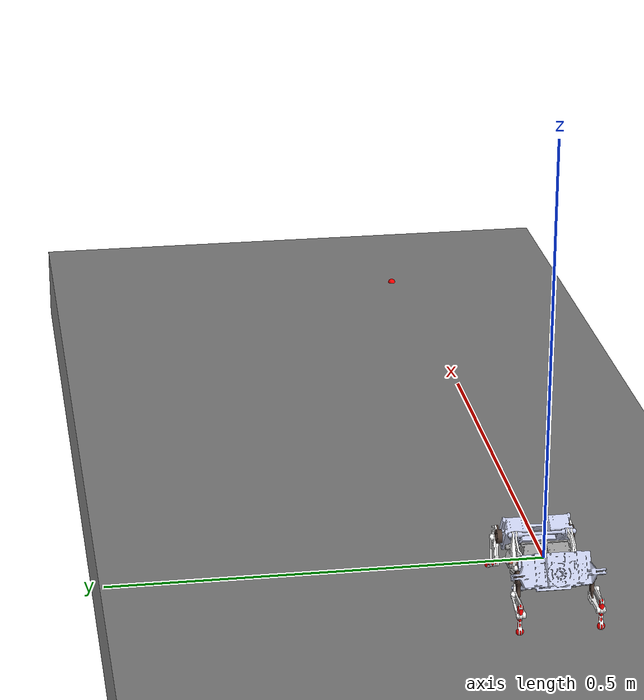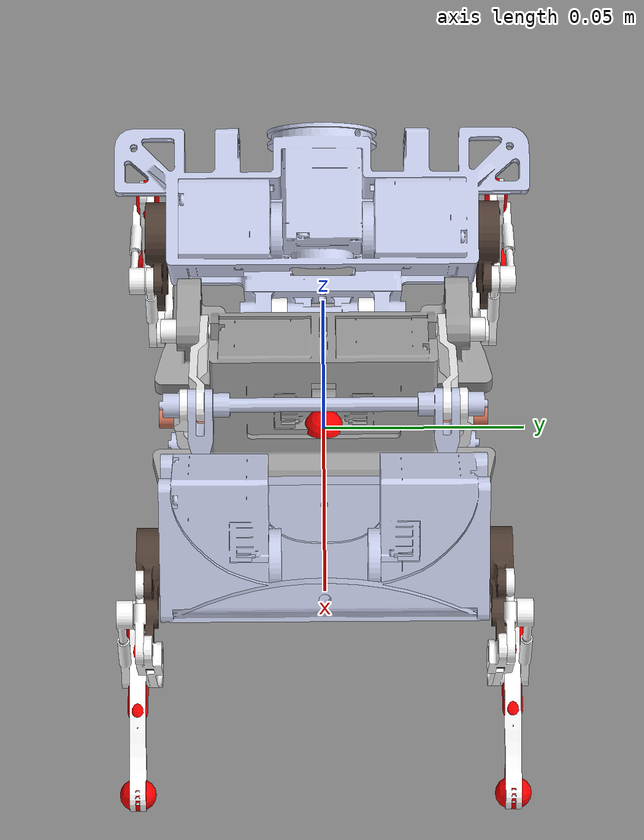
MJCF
<mujoco model="20240517sengibot_urdfall_2 - demo">
  <compiler angle="radian" meshdir="D:\MuJoCoLab_1.5\src\mjlab\asset_zoo\robots\Sengibot\xmls\meshes"/>
  <option timestep="2e-3" iterations="200" tolerance="1e-9" cone="elliptic"/>

  <size nconmax="500" njmax="1000"/>

  <equality>
    <connect body1="link_upinner" body2="link_upleft0" anchor="0.01639 0.00008 0.02513" solimp="1 1 0.001"/>
    <connect body1="link_upleft1" body2="link_up_p" anchor="-0.04064 -0.0001 -0.02109" solimp="1 1 0.001"/>
    <connect body1="link_up_p" body2="link_upright1" anchor="0 0 0" solimp="1 1 0.001"/>
    <connect body1="link_downinner" body2="link_downright0" anchor="-0.01232 -0.00002 -0.02735" solimp="1 1 0.001"/>
    <connect body1="link_downright1" body2="link_down_p" anchor="0.04357 0 0.01407" solimp="1 1 0.001"/>
    <connect body1="link_down_p" body2="link_downleft1" anchor="0 0 0" solimp="1 1 0.001"/>
    <connect body1="Link_LH1" body2="link_LH_upspring1" anchor="0.010 0 -0.00005" solimp="1 1 0.001"/>
    <connect body1="link_LH_tibia" body2="link_LH_downspring1" anchor="0 0 0" solimp="1 1 0.001"/>
    <connect body1="link_LH_tibia" body2="link_LH_femur" anchor="0.00045 0 0.00999" solimp="1 1 0.001"/>
    <connect body1="link_RH1" body2="link_RH_upspring1" anchor="0.010 0 -0.00005" solimp="1 1 0.001"/>
    <connect body1="link_RH_tibia" body2="link_RH_downspring1" anchor="0 0 0" solimp="1 1 0.001"/>
    <connect body1="link_RH_tibia" body2="link_RH_femur" anchor="0.00045 0 0.00999" solimp="1 1 0.001"/>
    <connect body1="link_LF1" body2="link_LF_upspring1" anchor="0.00447 0 0.00895" solimp="1 1 0.001"/>
    <connect body1="link_LF_tibia" body2="link_LF_downspring1" anchor="0 0 0" solimp="1 1 0.001"/>
    <connect body1="link_LF_tibia" body2="link_LF_femur" anchor="-0.00876 0 0.00482" solimp="1 1 0.001"/>
    <connect body1="link_RF1" body2="link_RF_upspring1" anchor="0.00447 0 0.00895" solimp="1 1 0.001"/>
    <connect body1="link_RF_tibia" body2="link_RF_downspring1" anchor="0 0 0" solimp="1 1 0.001"/>
    <connect body1="link_RF_tibia" body2="link_RF_femur" anchor="-0.00876 0 0.00482" solimp="1 1 0.001"/>
  </equality>

  <asset>
    <texture name="texplane" type="2d" builtin="checker" rgb1=".2 .3 .4" rgb2=".1 0.15 0.2" width="256" height="256" mark="cross" markrgb=".1 .1 .1"/>
    <material name="matplane" reflectance="0.3" texture="texplane" texrepeat="10 10" texuniform="true"/>
  </asset>

  <asset>
	<hfield name="terrain" nrow="1000" ncol="1000" size="2.5 2.5 0.1 0.01"/>
  </asset>

  <asset>
  <!-- "link_downleft0" == 前架；"link_upright0" == 后架 -->
    <mesh name="base_link" file="base_link.STL"/>
    <mesh name="link_upleft0" file="link_upleft0.STL"/>
    <mesh name="link_upleft1" file="link_upleft1.STL"/>
    <mesh name="link_upright0" file="link_upright0.STL"/>
    <mesh name="link_upright1" file="link_upright1.STL"/>
    <mesh name="link_LH_drive" file="link_LH_drive.STL"/>
    <mesh name="link_LH_upspring0" file="link_LH_upspring0.STL"/>
    <mesh name="link_LH_upspring1" file="link_LH_upspring1.STL"/>
    <mesh name="link_LH_downspring0" file="link_LH_downspring0.STL"/>
    <mesh name="link_LH_downspring1" file="link_LH_downspring1.STL"/>
    <mesh name="link_LH_femur" file="link_LH_femur.STL"/>
    <mesh name="Link_LH1" file="Link_LH1.STL"/>
    <mesh name="link_LH_tibia" file="link_LH_tibia.STL"/>
    <mesh name="link_RH_drive" file="link_RH_drive.STL"/>
    <mesh name="link_RH_upspring0" file="link_RH_upspring0.STL"/>
    <mesh name="link_RH_upspring1" file="link_RH_upspring1.STL"/>
    <mesh name="link_RH_downspring0" file="link_RH_downspring0.STL"/>
    <mesh name="link_RH_downspring1" file="link_RH_downspring1.STL"/>
    <mesh name="link_RH_femur" file="link_RH_femur.STL"/>
    <mesh name="link_RH1" file="link_RH1.STL"/>
    <mesh name="link_RH_tibia" file="link_RH_tibia.STL"/>
    <mesh name="link_up_p" file="link_up_p.STL"/>
    <mesh name="link_waist_drive" file="link_waist_drive.STL"/>
    <mesh name="link_upinner" file="link_upinner.STL"/>
    <mesh name="link_downinner" file="link_downinner.STL"/>
    <mesh name="link_downleft0" file="link_downleft0.STL"/>
    <mesh name="link_downleft1" file="link_downleft1.STL"/>
    <mesh name="link_LF_drive" file="link_LF_drive.STL"/>
    <mesh name="link_LF_upspring0" file="link_LF_upspring0.STL"/>
    <mesh name="link_LF_upspring1" file="link_LF_upspring1.STL"/>
    <mesh name="link_LF_downspring0" file="link_LF_downspring0.STL"/>
    <mesh name="link_LF_downspring1" file="link_LF_downspring1.STL"/>
    <mesh name="link_LF_femur" file="link_LF_femur.STL"/>
    <mesh name="link_LF1" file="link_LF1.STL"/>
    <mesh name="link_LF_tibia" file="link_LF_tibia.STL"/>
    <mesh name="link_RF_drive" file="link_RF_drive.STL"/>
    <mesh name="link_RF_upspring0" file="link_RF_upspring0.STL"/>
    <mesh name="link_RF_upspring1" file="link_RF_upspring1.STL"/>
    <mesh name="link_RF_downspring0" file="link_RF_downspring0.STL"/>
    <mesh name="link_RF_downspring1" file="link_RF_downspring1.STL"/>
    <mesh name="link_RF_femur" file="link_RF_femur.STL"/>
    <mesh name="link_RF1" file="link_RF1.STL"/>
    <mesh name="link_RF_tibia" file="link_RF_tibia.STL"/>
    <mesh name="link_downright0" file="link_downright0.STL"/>
    <mesh name="link_downright1" file="link_downright1.STL"/>
    <mesh name="link_down_p" file="link_down_p.STL"/>
  </asset>

  <worldbody>

	<body name="terrain" pos="0 0 0">
		<geom name="platform1" pos="0 0 -0.1" size="5.5 0.5 .05" type="box" margin="1e-5" condim="3" contype="1" friction="0.33 0.01 0.01" solref="0.004 1" rgba="0.5 0.5 0.5 1"/>
		<geom name="site" type="sphere" pos="1 0 -0.05" size="0.005" rgba="1 0 0 1" contype="0" conaffinity="0" />
	</body>
	 <!-- 添加一个用于显示质心的浮动 body -->
    <body name="com_visual" mocap="true" pos="0 0 0">
        <geom name="com_indicator" type="sphere" size="0.005" rgba="1 0 0 1" contype="0" conaffinity="0" />
    </body>
	   <body name="torso" >
		  <geom type="mesh" contype="0" conaffinity="0" group="1" density="0" rgba="0.627451 0.627451 0.627451 1" mesh="base_link"/>
		  <inertial pos="-7.295E-03 0.026E-03 -0.442E-03" quat="0.684538 0.684538 -0.177221 0.177221" mass="69e-3" diaginertia="3.3448e-05 1.9836e-05 4.2315e-05"/>
		  <freejoint name="robot"/>

		  <!-- 设置跟随相机 -->
		  <camera name="follow_camera" mode='track' pos="0 -1.0 0" euler="1.57 0 0" fovy="20" />
		  <light name="follow_light" mode="track" pos="0 -0.5 0.5" dir="0 0 -1" directional="true" castshadow="false" ambient="0.3 0.3 0.3" diffuse="0.8 0.8 0.8" specular="0.2 0.2 0.2" active="true"/>
		<body name="link_upleft0" pos="0.023934 -8.2545e-05 0.0041101">
		  <inertial pos="-0.00982017 5.3171e-05 0.0176946" quat="0.684538 0.684538 -0.177221 0.177221" mass="0.00375372" diaginertia="3.92658e-07 3.1666e-07 9.8528e-08"/>
		  <joint name="joint_upleft0" pos="0 0 0" axis="0 1 0" range="-3.14 3.14" damping="0.0005" type="hinge" armature="0.00005" limited="true"/>
		  <geom type="mesh" contype="0" conaffinity="0" group="1" density="0" rgba="0.792157 0.819608 0.933333 1" mesh="link_upleft0"/>
		  <body name="link_upleft1" pos="-0.0117052 0.0001 0.0210911">
			<inertial pos="-0.0209999 -5e-05 -0.0108986" quat="0.604285 0.367204 0.367204 0.604285" mass="0.00145083" diaginertia="3.20718e-07 3.13852e-07 9.89858e-09"/>
			<joint name="joint_upleft1" pos="0 0 0" axis="0 -1 0" range="-3.14 3.14" damping="0.0005" type="hinge" armature="0.00005" limited="true"/>
			<geom type="mesh" contype="0" conaffinity="0" group="1" density="0" rgba="1 1 1 1" mesh="link_upleft1"/>
		  </body>
		</body>
		<body name="link_upright0" pos="-0.039266 -3.25447e-05 -0.00454986">
		  <inertial pos="-17.457E-03 -0.005E-03 17.581E-03" quat="0.647168 0.647039 -0.285209 0.284903" mass="92e-3" diaginertia="53.225e-06 17.653e-06 52.362e-06"/>
		  <joint name="joint_upright0" pos="0 0 0" axis="0 -1 0" range="0 1.047" damping="0.0005" type="hinge" armature="0.00005" limited="true"/>
		  <geom type="mesh" contype="1" conaffinity="1" group="1" density="0" rgba="0.792157 0.819608 0.933333 1" mesh="link_upright0"/>
		  <body name="link_upright1" pos="0.00539585 -5e-05 0.00870301">
			<inertial pos="0.00272992 5e-05 -2.15042e-05" quat="0.498027 0.501965 0.501965 0.498027" mass="0.000524864" diaginertia="1.04177e-08 7.9116e-09 3.88156e-09"/>
			<joint name="joint_upright1" pos="0 0 0" axis="0 -1 0" range="-3.14 3.14" damping="0.0005" type="hinge" armature="0.00005" limited="true"/>
			<geom type="mesh" contype="0" conaffinity="0" group="1" density="0" rgba="1 1 1 1" mesh="link_upright1"/>
		  </body>
		  <body name="link_LH_drive" pos="-0.0189103 0.04525 0.0117244">
			<inertial pos="0.000249013 -0.00306057 -0.00475959" quat="0.706445 0.0116896 0.00908539 0.707613" mass="0.00161934" diaginertia="1.47502e-07 1.26531e-07 2.79963e-08"/>
			<joint name="joint_LH_drive" pos="0 0 0" axis="0 1 0" range="-1.0 1.5" damping="0.005" type="hinge" armature="0.00015" limited="true"/>
			<geom type="mesh" contype="0" conaffinity="0" group="1" density="0" rgba="0.317647 0.247059 0.207843 1" mesh="link_LH_drive"/>
			<body name="link_LH_upspring0" pos="0.00967535 0 -0.00744228">
			  <inertial pos="-0.000129935 -0.001 -0.00286595" quat="0.706925 0.0160168 0.0160168 0.706925" mass="1.485126e-03" diaginertia="1.7741e-09 1.58295e-09 2.38179e-10"/>
			  <joint name="joint_LH_upspring0" pos="0 0 0" axis="0 1 0" range="-3.14 3.14" damping="0.0005" type="hinge" armature="0.00005" limited="true"/>
			  <geom type="mesh" contype="0" conaffinity="0" group="1" density="0" rgba="1 1 1 1" mesh="link_LH_upspring0"/>
			  <body name="link_LH_upspring1" pos="-0.00102354 0 -0.0225768">
				<inertial pos="0.000199448 -0.001 0.00439942" quat="0.706925 0.016016 0.016016 0.706925" mass="0.001511144" diaginertia="3.20482e-09 2.97472e-09 3.38861e-10"/>
				<joint name="joint_LH_upspring1" pos="0 0 0" axis="-0.0452892 0 -0.998974" type="slide" range="-0.05 0.05" stiffness="1500" damping="0.0005" armature="0.00005" limited="true" springref="-0.002"/>
				<geom type="mesh" contype="0" conaffinity="0" group="1" density="0" rgba="1 1 1 1" mesh="link_LH_upspring1"/>
			  </body>
			</body>
			<body name="link_LH_downspring0" pos="-0.000898708 0 -0.0199798">
			  <inertial pos="-0.00191627 0.00324043 -0.000619387" quat="0.58988 0.441364 0.389924 0.552447" mass="0.001532344" diaginertia="2.85179e-09 2.57389e-09 5.69633e-10"/>
			  <joint name="joint_LH_downspring0" pos="0 0 0" axis="0 -1 0" range="-3.14 3.14" damping="0.0005" type="hinge" armature="0.00005" limited="true"/>
			  <geom type="mesh" contype="0" conaffinity="0" group="1" density="0" rgba="1 1 1 1" mesh="link_LH_downspring0"/>
			  <body name="link_LH_downspring1" pos="-0.030449 0 -0.0098417">
				<inertial pos="0.00485605 0.00400001 0.00156956" quat="0.571741 0.416067 0.416067 0.571741" mass="0.001517678" diaginertia="4.19189e-09 3.96178e-09 3.50164e-10"/>
				<joint name="joint_LH_downspring1" pos="0 0 0" axis="-0.951531 0 -0.307553" type="slide" range="-0.05 0.05" damping="0.0005" armature="0.00005" limited="true"/>
				<geom type="mesh" contype="0" conaffinity="0" group="1" density="0" rgba="1 1 1 1" mesh="link_LH_downspring1"/>
			  </body>
			</body>
			<body name="link_LH_femur" pos="-0.000898708 0 -0.0199798">
			  <inertial pos="-0.0149998 0 7.40975e-05" quat="0.498764 0.501233 0.501233 0.498764" mass="0.001061532" diaginertia="3.28664e-08 3.2012e-08 9.96447e-10"/>
			  <joint name="joint_LH_femur" pos="0 0 0" axis="0 -1 0" range="-3 3" damping="0.0005" type="hinge" armature="0.00005" limited="true"/>
			  <geom type="mesh" contype="0" conaffinity="0" group="1" density="0" rgba="1 1 1 1" mesh="link_LH_femur"/>
			</body>
			<body name="Link_LH1" pos="-0.00134806 0 -0.0299697">
			  <inertial pos="-0.0101495 -0.003 -0.000167372" quat="0.494638 0.505305 0.505305 0.494638" mass="0.000821746" diaginertia="1.29043e-07 1.27809e-07 4.86076e-09"/>
			  <joint name="joint_LH1" pos="0 0 0" axis="0 1 0" range="-3 3" damping="0.0005" type="hinge" armature="0.00005" limited="true"/>
			  <geom type="mesh" contype="1" conaffinity="1" group="1" density="0" rgba="1 1 1 1" mesh="Link_LH1"/>
			  <body name="link_LH_tibia" pos="-0.0299996 0 0.000148195">
				<inertial pos="1.51888e-05 0.00119496 -0.00787586" quat="0.71427 0.00661081 0.0245086 0.69941" mass="0.001269622" diaginertia="6.01074e-08 5.8585e-08 2.5425e-09"/>
				<joint name="joint_LH_tibia" pos="0 0 0" axis="0 -1 0" range="-0.7 0.7" damping="0.005" type="hinge" armature="0.00015" limited="true"/>
				<geom name="LH_foot" type="mesh" contype="0" conaffinity="0" group="1" density="0" rgba="1 1 1 1" mesh="link_LH_tibia" friction="0.1 0.01 0.01"/>
				<geom name="tibia3_1" type="capsule" pos="0 0.001 0.005" axisangle="0 1 0 0" size="0.003 0.0055 0" rgba="1 0 0 1" contype="1" conaffinity="1" friction="0.0 0.01 0.01" solref="0.004 1"/>
				<geom name="tibia3_2" type="capsule" pos="0.0003 0.001 -0.0025" axisangle="0 1 0 -0.25" size="0.0025 0.004 0" rgba="1 0 0 1" contype="1" conaffinity="1" friction="0.0 0.01 0.01" solref="0.004 1"/>
				<geom name="tibia3_3" type="capsule" pos="0.0003 0.001 -0.015" axisangle="0 1 0 0.25" size="0.002 0.005 0" rgba="1 0 0 1" contype="1" conaffinity="1" friction="0.0 0.01 0.01" solref="0.004 1"/>
				<geom name="foot3" type="capsule" pos="-0.001 0.001 -0.02" axisangle="1 0 0 1.57079633" size="0.004 0.0005 0" rgba="1 0 0 1" contype="1" conaffinity="1" friction="0.0 0.01 0.01" solref="0.004 1"/>
			  </body>
			</body>
		  </body>
		  <body name="link_RH_drive" pos="-0.01891 -0.04525 0.011724">
			<inertial pos="0.000249013 0.00306057 -0.00475959" quat="0.707613 0.00908538 0.0116896 0.706445" mass="0.00161934" diaginertia="1.47502e-07 1.26531e-07 2.79963e-08"/>
			<joint name="joint_RH_drive" pos="0 0 0" axis="0 1 0" range="-1.0 1.5" damping="0.005" type="hinge" armature="0.00015" limited="true"/>
			<geom type="mesh" contype="0" conaffinity="0" group="1" density="0" rgba="0.317647 0.247059 0.207843 1" mesh="link_RH_drive"/>
			<body name="link_RH_upspring0" pos="0.0096754 0 -0.0074423">
			  <inertial pos="-0.000129935 0.000999999 -0.00286595" quat="0.706925 0.0160168 0.0160168 0.706925" mass="1.485126e-03" diaginertia="1.7741e-09 1.58295e-09 2.38179e-10"/>
			  <joint name="joint_RH_upspring0" pos="0 0 0" axis="0 1 0" range="-3.14 3.14" damping="0.0005" type="hinge" armature="0.00005" limited="true"/>
			  <geom type="mesh" contype="0" conaffinity="0" group="1" density="0" rgba="1 1 1 1" mesh="link_RH_upspring0"/>
			  <body name="link_RH_upspring1" pos="-0.0010235 0 -0.022577">
				<inertial pos="0.000199448 0.000999995 0.00439942" quat="0.706925 0.016016 0.016016 0.706925" mass="0.00151144" diaginertia="3.20482e-09 2.97472e-09 3.38861e-10"/>
				<joint name="joint_RH_upspring1" pos="0 0 0" axis="-0.0452892 0 -0.998974" type="slide" range="-0.03 0.03" stiffness="1500" damping="0.0005"  armature="0.00005" limited="true" springref= "-0.002"/>
				<geom type="mesh" contype="0" conaffinity="0" group="1" density="0" rgba="1 1 1 1" mesh="link_RH_upspring1"/>
			  </body>
			</body>
			<body name="link_RH_downspring0" pos="-0.00089871 0 -0.01998">
			  <inertial pos="-0.00191625 -0.00324043 -0.000619374" quat="0.552446 0.389926 0.441365 0.58988" mass="0.001532343" diaginertia="2.85176e-09 2.57387e-09 5.69633e-10"/>
			  <joint name="joint_RH_downspring0" pos="0 0 0" axis="0 1 0" range="-3.14 3.14" damping="0.0005" type="hinge" armature="0.00005" limited="true"/>
			  <geom type="mesh" contype="0" conaffinity="0" group="1" density="0" rgba="1 1 1 1" mesh="link_RH_downspring0"/>
			  <body name="link_RH_downspring1" pos="-0.030449 0 -0.0098417">
				<inertial pos="0.00485605 -0.00399999 0.00156956" quat="0.571741 0.416067 0.416067 0.571741" mass="0.001517678" diaginertia="4.19189e-09 3.96178e-09 3.50164e-10"/>
				<joint name="joint_RH_downspring1" pos="0 0 0" axis="-0.951532 0 -0.307551" type="slide" range="-0.03 0.03" damping="0.0005"  armature="0.00005" limited="true"/>
				<geom type="mesh" contype="0" conaffinity="0" group="1" density="0" rgba="1 1 1 1" mesh="link_RH_downspring1"/>
			  </body>
			</body>
			<body name="link_RH_femur" pos="-0.00089871 0 -0.01998">
			  <inertial pos="-0.0149998 0 7.40975e-05" quat="0.498764 0.501233 0.501233 0.498764" mass="0.001061532" diaginertia=" 9.96447e-10 3.28664e-08 3.2012e-08"/>
			  <joint name="joint_RH_femur" pos="0 0 0" axis="0 1 0" range="-3.14 3.14" damping="0.0005" type="hinge" armature="0.00005" limited="true"/>
			  <geom type="mesh" contype="0" conaffinity="0" group="1" density="0" rgba="1 1 1 1" mesh="link_RH_femur"/>
			</body>
			<body name="link_RH1" pos="-0.0013481 0 -0.02997">
			  <inertial pos="-0.0101495 0.003 -0.000167372" quat="0.494638 0.505305 0.505305 0.494638" mass="0.000821746" diaginertia=" 4.86076e-09 1.29043e-07 1.27809e-07"/>
			  <joint name="joint_RH1" pos="0 0 0" axis="0 1 0" range="-3 3" damping="0.0005" type="hinge" armature="0.00005" limited="true"/>
			  <geom type="mesh" contype="1" conaffinity="1" group="1" density="0" rgba="1 1 1 1" mesh="link_RH1"/>
			  <body name="link_RH_tibia" pos="-0.03 0 0.0001482">
				<inertial pos="1.57079e-05 -0.00118949 -0.00782787" quat="0.699694 0.0242515 0.00677689 0.713998" mass="0.001269622" diaginertia="6.03593e-08 5.88327e-08 2.55745e-09"/>
				<joint name="joint_RH_tibia" pos="0 0 0" axis="0 1 0" range="-0.7 0.7" damping="0.005" type="hinge" armature="0.00015" limited="true"/>
				<geom name="RH_foot" type="mesh" contype="0" conaffinity="0" group="1" density="0" rgba="1 1 1 1" mesh="link_RH_tibia" friction="0.1 0.01 0.01"/>
				<geom name="tibia4_1" type="capsule" pos="0 -0.001 0.005" axisangle="0 1 0 0" size="0.003 0.0055 0" rgba="1 0 0 1" contype="1" conaffinity="1" friction="0.0 0.01 0.01" solref="0.004 1"/>
				<geom name="tibia4_2" type="capsule" pos="0.0003 -0.001 -0.0025" axisangle="0 1 0 -0.25" size="0.0025 0.004 0" rgba="1 0 0 1" contype="1" conaffinity="1" friction="0.0 0.01 0.01" solref="0.004 1"/>
				<geom name="tibia4_3" type="capsule" pos="0.0003 -0.001 -0.015" axisangle="0 1 0 0.25" size="0.002 0.005 0" rgba="1 0 0 1" contype="1" conaffinity="1" friction="0.0 0.01 0.01" solref="0.004 1"/>
				<geom name="foot4" type="capsule" pos="-0.001 -0.001 -0.02" axisangle="1 0 0 1.57079633" size="0.004 0.0005 0" rgba="1 0 0 1" contype="1" conaffinity="1" friction="0.0 0.01 0.01" solref="0.004 1"/>
			  </body>
			</body>
		  </body>
		</body>
		<body name="link_up_p" pos="-0.02841 -8.2545e-05 0.0041101">
		  <inertial pos="0 4.97246e-05 0" quat="0.707107 0.707107 0 0" mass="0.00253019" diaginertia="1.5413e-07 1.5413e-07 6.45596e-09"/>
		  <joint name="joint_up_p" pos="0 0 0" axis="1 0 0" type="slide" range="-0.003 0.003" damping="0.0005" armature="0.00005" limited="true"/>
		  <geom type="mesh" contype="0" conaffinity="0" group="1" density="0" rgba="1 1 1 1" mesh="link_up_p"/>
		</body>
		<body name="link_waist_drive" pos="-0.006066 -3.2545e-05 -0.0045499">
		  <inertial pos="0.000589054 0 0.0014254" quat="0.693576 0.137666 0.137666 0.693576" mass="0.00973607" diaginertia="2.70184e-07 1.79814e-07 1.45205e-07"/>
		  <joint name="joint_waist_drive" pos="0 0 0" axis="0 -1 0" damping="0.005" type="hinge" armature="0.00015" limited="false"/>
		  <geom type="mesh" contype="0" conaffinity="0" group="1" density="0" rgba="0.839216 0.470588 0.368627 1" mesh="link_waist_drive"/>
		  <body name="link_upinner" pos="0.00190964 -2.66799e-05 0.00462096">
			<inertial pos="0.00777753 2.66799e-05 0.0119285" quat="0.677804 0.20145 0.20145 0.677804" mass="0.00151864" diaginertia="1.27249e-07 1.20283e-07 1.02553e-08"/>
			<!-- 注意：3.14不是pi，这会限制全周运动 -->
			<joint name="joint_upinner" pos="0 0 0" axis="0 -1 0" damping="0.0005" type="hinge" armature="0.00005" limited="false"/>
			<geom type="mesh" contype="0" conaffinity="0" group="1" density="0" rgba="1 1 1 1" mesh="link_upinner"/>
		  </body>
		  <body name="link_downinner" pos="0.00190964 -2.66799e-05 0.00462096">
			<inertial pos="-0.00615947 2.66799e-05 -0.013677" quat="0.69134 0.148491 0.148491 0.69134" mass="0.00140744" diaginertia="1.19201e-07 1.13152e-07 9.33241e-09"/>
			<joint name="joint_downinner" pos="0 0 0" axis="0 -1 0" damping="0.0005" type="hinge" armature="0.00005" limited="false"/>
			<geom type="mesh" contype="1" conaffinity="1" group="1" density="0" rgba="1 1 1 1" mesh="link_downinner"/>
		  </body>
		</body>
		<body name="link_downleft0" pos="0.027134 -3.2545e-05 -0.0045499">
		  <inertial pos="14.977E-03 -0.001E-03 13.830E-03" quat="0.645215 0.645215 -0.289302 0.289308" mass="66e-3" diaginertia="46.196e-06 10.560e-06 44.175e-06"/>
		  <joint name="joint_downleft0" pos="0 0 0" axis="0 -1 0" range="-1.047 0" damping="0.0005" type="hinge" armature="0.00005" limited="true"/>
		  <geom type="mesh" contype="1" conaffinity="1" group="1" density="0" rgba="0.792157 0.819608 0.933333 1" mesh="link_downleft0"/>
		  <body name="link_downleft1" pos="0.00542039 -5e-05 -0.00868775">
			<inertial pos="-0.00272996 5e-05 1.3875e-05" quat="0.498728 0.501269 0.501269 0.498728" mass="0.000524864" diaginertia="1.04177e-08 7.9116e-09 3.88156e-09"/>
			<joint name="joint_downleft1" pos="0 0 0" axis="0 -1 0" range="-3.14 3.14" damping="0.0005" type="hinge" armature="0.00005" limited="true"/>
			<geom type="mesh" contype="1" conaffinity="1" group="1" density="0" rgba="1 1 1 1" mesh="link_downleft1"/>
		  </body>
		  <body name="link_LF_drive" pos="0.0188772 0.04525 0.0117777">
			<inertial pos="0.00296312 -0.00306548 -0.00107607" quat="0.375504 0.597268 0.59975 0.37758" mass="0.00160549" diaginertia="9.35076e-08 7.30732e-08 2.72096e-08"/>
			<joint name="joint_LF_drive" pos="0 0 0" axis="0 1 0" range="-1.5 0.5" damping="0.005" type="hinge" armature="0.00015" limited="true"/>
			<geom type="mesh" contype="0" conaffinity="0" group="1" density="0" rgba="0.317647 0.247059 0.207843 1" mesh="link_LF_drive"/>
			<body name="link_LF_upspring0" pos="0.0109532 0 0.00538771">
			  <inertial pos="0.000950602 -0.000999999 -0.000523588" quat="0.359703 0.60878 0.60878 0.359703" mass="1.48034e-03" diaginertia="7.38844e-10 5.47689e-10 2.30324e-10"/>
			  <joint name="joint_LF_upspring0" pos="0 0 0" axis="0 1 0" range="-3.14 3.14" damping="0.005" type="hinge" armature="0.00005" limited="true"/>
			  <geom type="mesh" contype="0" conaffinity="0" group="1" density="0" rgba="1 1 1 1" mesh="link_LF_upspring0"/>
			  <body name="link_LF_upspring1" pos="0.0136644 0 -0.00752621">
				<inertial pos="-0.00248462 -0.00100001 0.0013685" quat="0.359705 0.608779 0.608779 0.359705" mass="1.48091e-03" diaginertia="1.57206e-09 1.34195e-09 3.10602e-10"/>
				<joint name="joint_LF_upspring1" pos="0 0 0" axis="0.875924 0 -0.482449" type="slide" range="-0.03 0.03" stiffness="1000" damping="0.005" armature="0.00005" limited="true"/>
				<geom type="mesh" contype="0" conaffinity="0" group="1" density="0" rgba="1 1 1 1" mesh="link_LF_upspring1"/>
			  </body>
			</body>
			<body name="link_LF_downspring0" pos="0.0113902 0 -0.006266">
			  <inertial pos="-0.000291718 0.00324043 -0.00199262" quat="0.706836 0.0830223 0.0195724 0.702216" mass="0.00152343" diaginertia="2.85176e-09 2.57387e-09 5.69633e-10"/>
			  <joint name="joint_LF_downspring0" pos="0 0 0" axis="0 -1 0" range="-3.14 3.14" damping="0.005" type="hinge" armature="0.00005" limited="true"/>
			  <geom type="mesh" contype="0" conaffinity="0" group="1" density="0" rgba="1 1 1 1" mesh="link_LF_downspring0"/>
			  <body name="link_LF_downspring1" pos="-0.00463531 0 -0.0316625">
				<inertial pos="0.000739239 0.00399999 0.00504958" quat="0.70524 0.0513483 0.0513483 0.70524" mass="0.00157678" diaginertia="4.19189e-09 3.96178e-09 3.50165e-10"/>
				<joint name="joint_LF_downspring1" pos="0 0 0" axis="-0.144853 0 -0.989453" type="slide" range="-0.03 0.03" damping="0.005"  armature="0.00005" limited="true"/>
				<geom type="mesh" contype="0" conaffinity="0" group="1" density="0" rgba="1 1 1 1" mesh="link_LF_downspring1"/>
			  </body>
			</body>
			<body name="link_LF_femur" pos="0.0113902 0 -0.006266">
			  <inertial pos="-0.00669851 0 -0.0134213" quat="0.68825 0.162211 0.162211 0.68825" mass="0.001061532" diaginertia="3.28664e-08 3.2012e-08 9.96447e-10"/>
			  <joint name="joint_LF_femur" pos="0 0 0" axis="0 -1 0" range="-3.14 3.14" damping="0.005" type="hinge" armature="0.00005" limited="true"/>
			  <geom type="mesh" contype="0" conaffinity="0" group="1" density="0" rgba="1 1 1 1" mesh="link_LF_femur"/>
			</body>
			<body name="link_LF1" pos="0.0201519 0 -0.011086">
			  <inertial pos="-0.0043374 -0.003 -0.00917755" quat="0.686897 0.167848 0.167848 0.686897" mass="0.001021746" diaginertia="1.29043e-07 1.27809e-07 4.86076e-09"/>
			  <joint name="joint_LF1" pos="0 0 0" axis="0 1 0" range="-3 3" damping="0.005" type="hinge" armature="0.00005" limited="true"/>
			  <geom type="mesh" contype="0" conaffinity="0" group="1" density="0" rgba="1 1 1 1" mesh="link_LF1"/>
			  <body name="link_LF_tibia" pos="-0.013397 0 -0.0268425">
				<inertial pos="0.0118113 0.00115348 -0.00556732" quat="0.358343 0.622001 0.595306 0.360993" mass="0.001298703" diaginertia="1.22953e-07 1.20736e-07 3.54553e-09"/>
				<joint name="joint_LF_tibia" pos="0 0 0" axis="0 -1 0" range="-3 3" damping="0.005" type="hinge" armature="0.00005" limited="true"/>
				<geom name="LF_foot" type="mesh" contype="0" conaffinity="0" group="1" density="0" rgba="1 1 1 1" mesh="link_LF_tibia" friction="0.0 0.01 0.01"/>
				<geom name="tibia1_1" type="capsule" pos="-0.005 0.001 0.0025" axisangle="0 1 0 2.10" size="0.003 0.005 0" rgba="1 0 0 1" contype="1" conaffinity="1" friction="0.0 0.01 0.01" solref="0.004 1"/>
				<geom name="tibia1_2" type="capsule" pos="0.005 0.001 -0.0015" axisangle="0 1 0 1.75" size="0.0025 0.005 0" rgba="1 0 0 1" contype="1" conaffinity="1" friction="0.0 0.01 0.01" solref="0.004 1"/>
				<geom name="tibia1_3" type="capsule" pos="0.02 0.001 -0.01" axisangle="0 1 0 2.25" size="0.002 0.009 0" rgba="1 0 0 1" contype="1" conaffinity="1" friction="0.0 0.01 0.01" solref="0.004 1"/>
				<geom name="foot1" type="capsule" pos="0.0263 0.001 -0.0145" axisangle="1 0 0 1.57079633" size="0.004 0.0005 0" rgba="1 0 0 1" contype="1" conaffinity="1" friction="0.0 0.01 0.01" solref="0.004 1"/>
			  </body>
			</body>
		  </body>
		  <body name="link_RF_drive" pos="0.0188772 -0.04525 0.0117777">
			<inertial pos="0.00296312 0.00306548 -0.00107607" quat="0.37758 0.59975 0.597268 0.375504" mass="0.00160549" diaginertia="9.35076e-08 7.30732e-08 2.72096e-08"/>
			<joint name="joint_RF_drive" pos="0 0 0" axis="0 1 0" range="-1.5 0.5" damping="0.005" type="hinge" armature="0.00015" limited="true"/>
			<geom type="mesh" contype="0" conaffinity="0" group="1" density="0" rgba="0.317647 0.247059 0.207843 1" mesh="link_RF_drive"/>
			<body name="link_RF_upspring0" pos="0.0109532 0 0.00538771">
			  <inertial pos="0.000950602 0.001 -0.000523588" quat="0.359703 0.60878 0.60878 0.359703" mass="1.48034e-03" diaginertia="7.38844e-10 5.47689e-10 2.30324e-10"/>
			  <joint name="joint_RF_upspring0" pos="0 0 0" axis="0 1 0" range="-3.14 3.14" damping="0.005" type="hinge" armature="0.00005" limited="true"/>
			  <geom type="mesh" contype="0" conaffinity="0" group="1" density="0" rgba="1 1 1 1" mesh="link_RF_upspring0"/>
			  <body name="link_RF_upspring1" pos="0.0136644 0 -0.00752621">
				<inertial pos="-0.00248462 0.000999995 0.0013685" quat="0.359705 0.608779 0.608779 0.359705" mass="1.48091e-03" diaginertia="1.57206e-09 1.34195e-09 3.10602e-10"/>
				<joint name="joint_RF_upspring1" pos="0 0 0" axis="0.875924 0 -0.482449" type="slide" range="-0.03 0.03" stiffness="900" damping="0.005"  armature="0.00005" limited="true"/>
				<geom type="mesh" contype="0" conaffinity="0" group="1" density="0" rgba="1 1 1 1" mesh="link_RF_upspring1"/>
			  </body>
			</body>
			<body name="link_RF_downspring0" pos="0.0113902 0 -0.006266">
			  <inertial pos="-0.00029173 -0.0032404 -0.0019926" quat="0.702216 0.0195754 0.0830236 0.706836" mass="0.00152343" diaginertia="2.85183e-09 2.57387e-09 5.69634e-10"/>
			  <joint name="joint_RF_downspring0" pos="0 0 0" axis="0 1 0" range="-3.14 3.14" damping="0.005" type="hinge" armature="0.00005" limited="true"/>
			  <geom type="mesh" contype="0" conaffinity="0" group="1" density="0" rgba="1 1 1 1" mesh="link_RF_downspring0"/>
			  <body name="link_RF_downspring1" pos="-0.00463531 0 -0.0316625">
				<inertial pos="0.000739239 -0.00400001 0.00504958" quat="0.70524 0.0513483 0.0513483 0.70524" mass="0.00157678" diaginertia="4.19189e-09 3.96178e-09 3.50165e-10"/>
				<joint name="joint_RF_downspring1" pos="0 0 0" axis="-0.144853 0 -0.989453" type="slide" range="-0.03 0.03" damping="0.005"  armature="0.00005" limited="true"/>
				<geom type="mesh" contype="0" conaffinity="0" group="1" density="0" rgba="1 1 1 1" mesh="link_RF_downspring1"/>
			  </body>
			</body>
			<body name="link_RF_femur" pos="0.0113902 0 -0.006266">
			  <inertial pos="-0.00669851 0 -0.0134213" quat="0.68825 0.162211 0.162211 0.68825" mass="0.001061532" diaginertia="3.28664e-08 3.2012e-08 9.96447e-10"/>
			  <joint name="joint_RF_femur" pos="0 0 0" axis="0 1 0" range="-3.14 3.14" damping="0.005" type="hinge" armature="0.00005" limited="true"/>
			  <geom type="mesh" contype="0" conaffinity="0" group="1" density="0" rgba="1 1 1 1" mesh="link_RF_femur"/>
			</body>
			<body name="link_RF1" pos="0.0201519 0 -0.011086">
			  <inertial pos="-0.0043374 0.003 -0.00917755" quat="0.686897 0.167848 0.167848 0.686897" mass="0.001021746" diaginertia="1.29043e-07 1.27809e-07 4.86076e-09"/>
			  <joint name="joint_RF1" pos="0 0 0" axis="0 1 0" range="-3 3" damping="0.005" type="hinge" armature="0.00005" limited="true"/>
			  <geom type="mesh" contype="0" conaffinity="0" group="1" density="0" rgba="1 1 1 1" mesh="link_RF1"/>
			  <body name="link_RF_tibia" pos="-0.013397 0 -0.0268425">
				<inertial pos="0.0117271 -0.00114843 -0.0055264" quat="0.360982 0.595832 0.621361 0.35859" mass="0.001298703" diaginertia="1.23866e-07 1.21639e-07 3.56745e-09"/>
				<joint name="joint_RF_tibia" pos="0 0 0" axis="0 1 0" range="-3 3" damping="0.005" type="hinge" armature="0.00005" limited="true"/>
				<geom name="RF_foot" type="mesh" contype="0" conaffinity="0" group="1" density="0" rgba="1 1 1 1" mesh="link_RF_tibia" friction="0.0 0.01 0.01"/>
				<geom name="tibia2_1" type="capsule" pos="-0.005 -0.001 0.0025" axisangle="0 1 0 2.10" size="0.003 0.005 0" rgba="1 0 0 1" contype="1" conaffinity="1" friction="0.0 0.01 0.01" solref="0.004 1"/>
				<geom name="tibia2_2" type="capsule" pos="0.005 -0.001 -0.0015" axisangle="0 1 0 1.75" size="0.0025 0.005 0" rgba="1 0 0 1" contype="1" conaffinity="1" friction="0.0 0.01 0.01" solref="0.004 1"/>
				<geom name="tibia2_3" type="capsule" pos="0.02 -0.001 -0.01" axisangle="0 1 0 2.25" size="0.002 0.009 0" rgba="1 0 0 1" contype="1" conaffinity="1" friction="0.0 0.01 0.01" solref="0.004 1"/>
				<geom name="foot2" type="capsule" pos="0.0263 -0.001 -0.0145" axisangle="1 0 0 1.57079633" size="0.004 0.0005 0" rgba="1 0 0 1" contype="1" conaffinity="1" friction="0.0 0.01 0.01" solref="0.004 1"/>
			  </body>
			</body>
		  </body>
		</body>
		<body name="link_downright0" pos="-0.036066 1.7455e-05 -0.01321">
		  <inertial pos="0.016436 -5.3171e-05 -0.011807" quat="0.629172 0.629172 -0.322711 0.322711" mass="0.0037537" diaginertia="3.92659e-07 3.16661e-07 9.8528e-08"/>
		  <joint name="joint_downright0" pos="0 0 0" axis="0 -1 0" range="-3.14 3.14" damping="0.0005" type="hinge" armature="0.00005" limited="true"/>
		  <geom type="mesh" contype="0" conaffinity="0" group="1" density="0" rgba="0.79216 0.81961 0.93333 1" mesh="link_downright0"/>
		  <body name="link_downright1" pos="0.0195907 -0.0001 -0.0140731">
			<inertial pos="0.02064 5e-05 0.0066668" quat="0.571701 0.416122 0.416122 0.571701" mass="0.0020191" diaginertia="3.8175e-07 3.71221e-07 1.38753e-08"/>
			<joint name="joint_downright1" pos="0 0 0" axis="0 1 0" range="-3.14 3.14" damping="0.0005" type="hinge" armature="0.00005" limited="true"/>
			<geom type="mesh" contype="0" conaffinity="0" group="1" density="0" rgba="1 1 1 1" mesh="link_downright1"/>
		  </body>
		</body>
		<body name="link_down_p" pos="0.027094 -8.2593e-05 -0.01321">
		  <inertial pos="0 4.9725e-05 0" quat="0.707107 0.707107 0 0" mass="0.0025302" diaginertia="1.5413e-07 1.5413e-07 6.456e-09"/>
		  <joint name="joint_down_p" pos="0 0 0" axis="1 0 0" type="slide" range="-0.1 0.1" damping="0.0005"  armature="0.00005" limited="true"/>
		  <geom type="mesh" contype="0" conaffinity="0" group="1" density="0" rgba="1 1 1 1" mesh="link_down_p"/>
		</body>
	   </body>
  </worldbody>

 <actuator>
	<position joint="joint_RH_drive" name="joint_RH_drive" gear="1" kp="10" kv="0.05" ctrllimited="true" ctrlrange="-1.0 1.5" forcelimited="true" forcerange="-0.2 0.2"/>
 </actuator>

 <!-- sensor -->
 <sensor>
 </sensor>
</mujoco>
